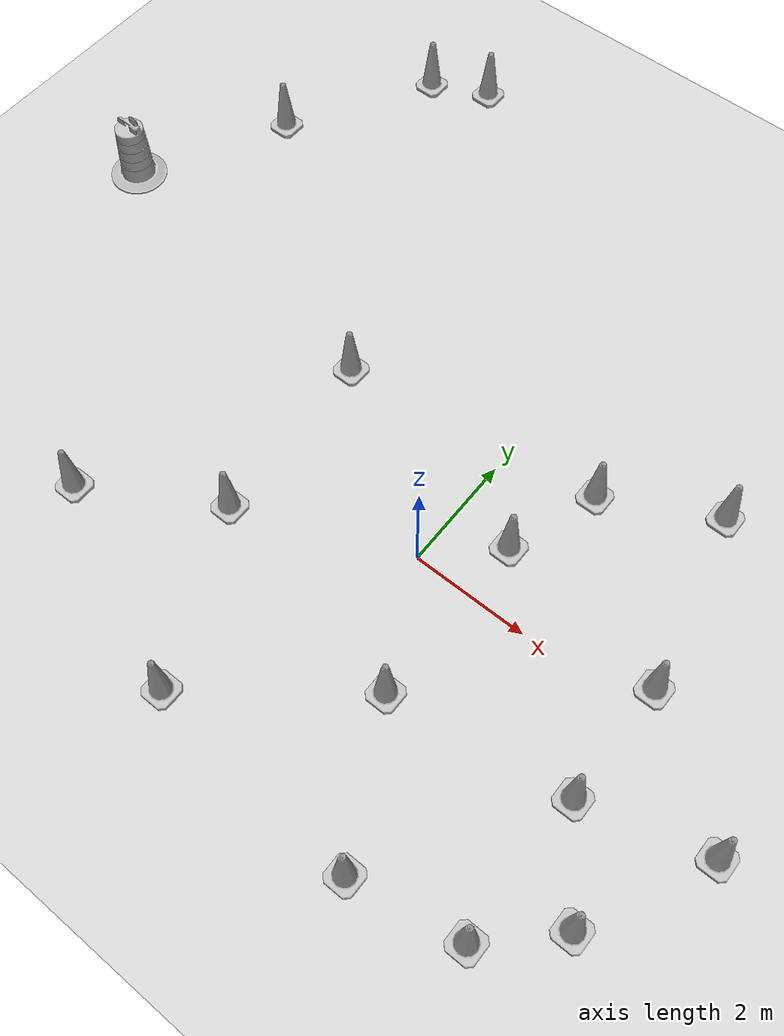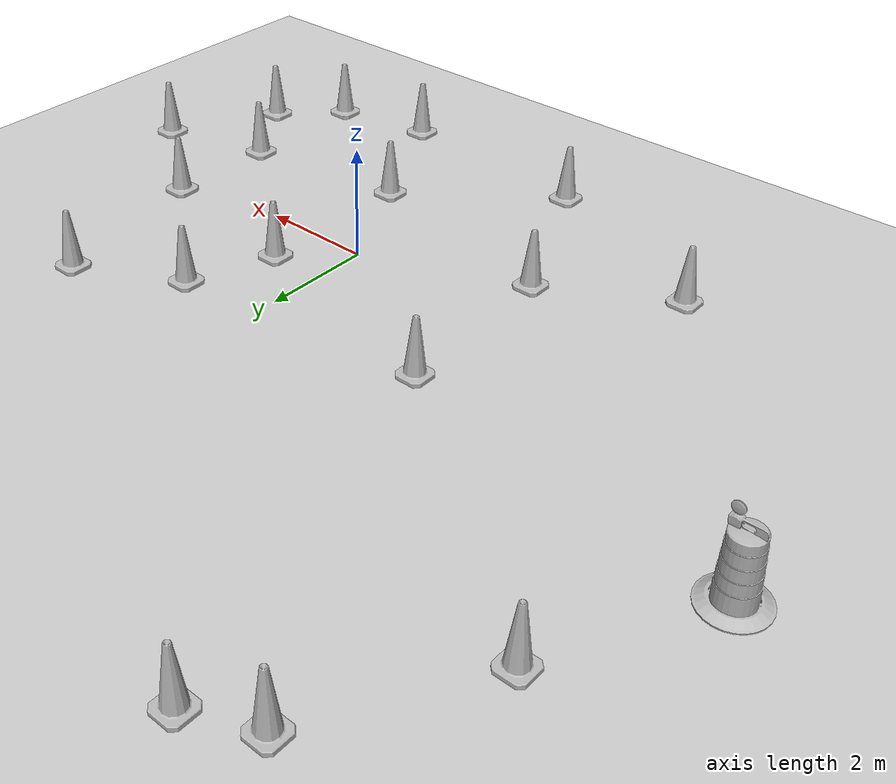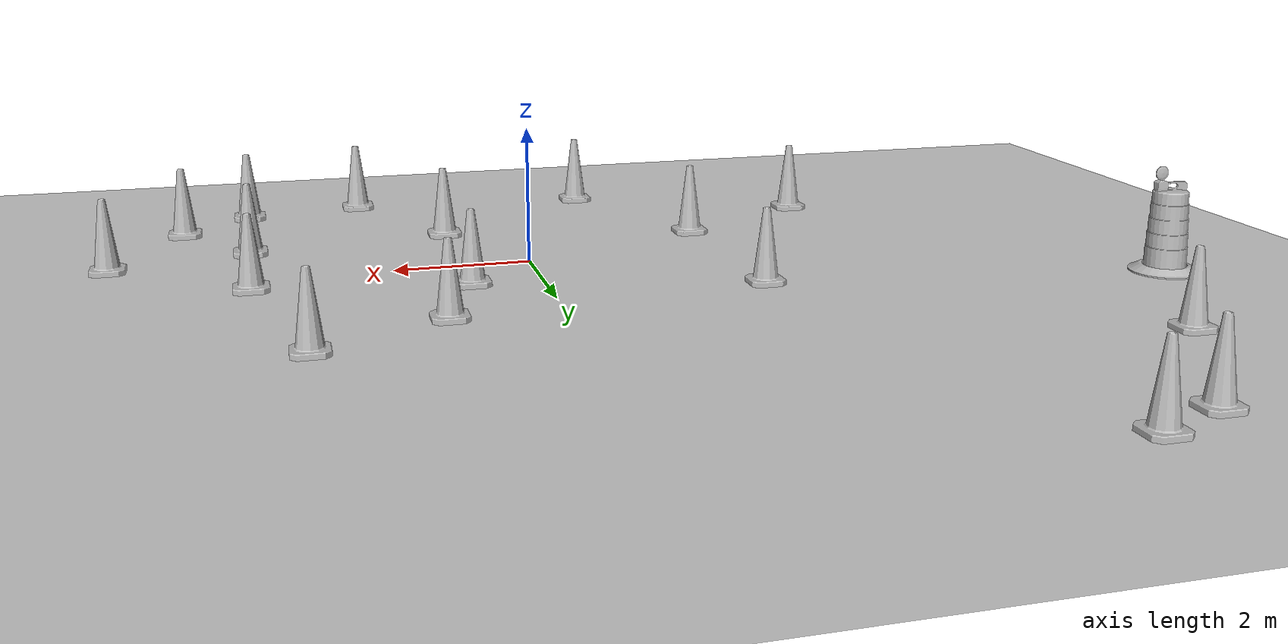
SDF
<sdf version="1.7">
 <world name="default">
  <light name="sun" type="directional">
   <pose>0 0 10 0 -0 0</pose>
   <diffuse>0.8 0.8 0.8 1</diffuse>
   <specular>0.2 0.2 0.2 1</specular>
   <attenuation>
    <range>1000</range>
    <constant>0.9</constant>
    <linear>0.01</linear>
    <quadratic>0.001</quadratic>
   </attenuation>
   <direction>-0.5 0.1 -0.9</direction>
   <spot><inner_angle>0</inner_angle><outer_angle>0</outer_angle><falloff>0</falloff></spot>
  </light>
  <model name="ground_plane">
   <static>1</static>
   <link name="link">
    <collision name="collision">
     <geometry><plane><normal>0 0 1</normal><size>100 100</size></plane></geometry>
     <surface>
      <contact><collide_bitmask>65535</collide_bitmask></contact>
      <friction><ode><mu>100</mu><mu2>50</mu2></ode></friction>
     </surface>
    </collision>
    <visual name="visual">
     <cast_shadows>0</cast_shadows>
     <geometry><plane><normal>0 0 1</normal><size>100 100</size></plane></geometry>
     <material>
      <script><uri>file://media/materials/scripts/gazebo.material</uri><name>Gazebo/Grey</name></script>
     </material>
    </visual>
   </link>
  </model>
  <gravity>0 0 -9.8</gravity>
  <magnetic_field>6e-06 2.3e-05 -4.2e-05</magnetic_field>
  <atmosphere type="adiabatic"/>
  <physics type="ode">
   <max_step_size>0.001</max_step_size>
   <real_time_factor>1</real_time_factor>
   <real_time_update_rate>1000</real_time_update_rate>
  </physics>
  <scene><ambient>0.4 0.4 0.4 1</ambient><background>0.7 0.7 0.7 1</background><shadows>1</shadows></scene>
  <audio><device>default</device></audio>
  <spherical_coordinates>
   <surface_model>EARTH_WGS84</surface_model>
   <latitude_deg>0</latitude_deg>
   <longitude_deg>0</longitude_deg>
   <elevation>0</elevation>
   <heading_deg>0</heading_deg>
  </spherical_coordinates>
  <model name="Construction Barrel">
   <link name="link">
    <inertial>
     <pose>0 0 0.4 0 -0 0</pose>
     <mass>500</mass>
     <inertia><ixx>51.2096</ixx><iyy>51.2096</iyy><izz>25</izz><ixy>0</ixy><ixz>0</ixz><iyz>0</iyz></inertia>
    </inertial>
    <collision name="collision">
     <geometry><mesh><uri>model://construction_barrel/meshes/construction_barrel.dae</uri></mesh></geometry>
    </collision>
    <visual name="visual">
     <geometry><mesh><uri>model://construction_barrel/meshes/construction_barrel.dae</uri></mesh></geometry>
    </visual>
   </link>
   <pose>-8.82426 2.90309 0 2e-06 -0 -2e-05</pose>
  </model>
  <model name="Construction Cone">
   <link name="link">
    <collision name="collision">
     <geometry>
      <mesh><scale>10 10 10</scale><uri>model://construction_cone/meshes/construction_cone.dae</uri></mesh>
     </geometry>
    </collision>
    <visual name="visual">
     <geometry>
      <mesh><scale>10 10 10</scale><uri>model://construction_cone/meshes/construction_cone.dae</uri></mesh>
     </geometry>
    </visual>
    <inertial>
     <inertia><ixx>1</ixx><ixy>0</ixy><ixz>0</ixz><iyy>1</iyy><iyz>0</iyz><izz>1</izz></inertia>
     <mass>1</mass>
    </inertial>
   </link>
   <pose>-2.83472 -1.16113 -8e-06 1e-06 -0 0</pose>
  </model>
  <model name="Construction Cone_clone">
   <link name="link">
    <collision name="collision">
     <geometry>
      <mesh><scale>10 10 10</scale><uri>model://construction_cone/meshes/construction_cone.dae</uri></mesh>
     </geometry>
    </collision>
    <visual name="visual">
     <geometry>
      <mesh><scale>10 10 10</scale><uri>model://construction_cone/meshes/construction_cone.dae</uri></mesh>
     </geometry>
    </visual>
    <inertial>
     <inertia><ixx>1</ixx><ixy>0</ixy><ixz>0</ixz><iyy>1</iyy><iyz>0</iyz><izz>1</izz></inertia>
     <mass>1</mass>
    </inertial>
   </link>
   <pose>1 -2 -0 0 -0 0</pose>
  </model>
  <model name="Construction Cone_clone_0">
   <link name="link">
    <collision name="collision">
     <geometry>
      <mesh><scale>10 10 10</scale><uri>model://construction_cone/meshes/construction_cone.dae</uri></mesh>
     </geometry>
    </collision>
    <visual name="visual">
     <geometry>
      <mesh><scale>10 10 10</scale><uri>model://construction_cone/meshes/construction_cone.dae</uri></mesh>
     </geometry>
    </visual>
    <inertial>
     <inertia><ixx>1</ixx><ixy>0</ixy><ixz>0</ixz><iyy>1</iyy><iyz>0</iyz><izz>1</izz></inertia>
     <mass>1</mass>
    </inertial>
   </link>
   <pose>1 1 -1e-05 0 1e-06 0</pose>
  </model>
  <model name="Construction Cone_clone_1">
   <link name="link">
    <collision name="collision">
     <geometry>
      <mesh><scale>10 10 10</scale><uri>model://construction_cone/meshes/construction_cone.dae</uri></mesh>
     </geometry>
    </collision>
    <visual name="visual">
     <geometry>
      <mesh><scale>10 10 10</scale><uri>model://construction_cone/meshes/construction_cone.dae</uri></mesh>
     </geometry>
    </visual>
    <inertial>
     <inertia><ixx>1</ixx><ixy>0</ixy><ixz>0</ixz><iyy>1</iyy><iyz>0</iyz><izz>1</izz></inertia>
     <mass>1</mass>
    </inertial>
   </link>
   <pose>-5 8.4629 -0 0 -1e-06 0</pose>
  </model>
  <model name="Construction Cone_clone_2">
   <link name="link">
    <collision name="collision">
     <geometry>
      <mesh><scale>10 10 10</scale><uri>model://construction_cone/meshes/construction_cone.dae</uri></mesh>
     </geometry>
    </collision>
    <visual name="visual">
     <geometry>
      <mesh><scale>10 10 10</scale><uri>model://construction_cone/meshes/construction_cone.dae</uri></mesh>
     </geometry>
    </visual>
    <inertial>
     <inertia><ixx>1</ixx><ixy>0</ixy><ixz>0</ixz><iyy>1</iyy><iyz>0</iyz><izz>1</izz></inertia>
     <mass>1</mass>
    </inertial>
   </link>
   <pose>-6 8 -0 0 -0 0</pose>
  </model>
  <model name="Construction Cone_clone_3">
   <link name="link">
    <collision name="collision">
     <geometry>
      <mesh><scale>10 10 10</scale><uri>model://construction_cone/meshes/construction_cone.dae</uri></mesh>
     </geometry>
    </collision>
    <visual name="visual">
     <geometry>
      <mesh><scale>10 10 10</scale><uri>model://construction_cone/meshes/construction_cone.dae</uri></mesh>
     </geometry>
    </visual>
    <inertial>
     <inertia><ixx>1</ixx><ixy>0</ixy><ixz>0</ixz><iyy>1</iyy><iyz>0</iyz><izz>1</izz></inertia>
     <mass>1</mass>
    </inertial>
   </link>
   <pose>-7.47852 5.46938 -0 0 -0 0</pose>
  </model>
  <model name="Construction Cone_clone_4">
   <link name="link">
    <collision name="collision">
     <geometry>
      <mesh><scale>10 10 10</scale><uri>model://construction_cone/meshes/construction_cone.dae</uri></mesh>
     </geometry>
    </collision>
    <visual name="visual">
     <geometry>
      <mesh><scale>10 10 10</scale><uri>model://construction_cone/meshes/construction_cone.dae</uri></mesh>
     </geometry>
    </visual>
    <inertial>
     <inertia><ixx>1</ixx><ixy>0</ixy><ixz>0</ixz><iyy>1</iyy><iyz>0</iyz><izz>1</izz></inertia>
     <mass>1</mass>
    </inertial>
   </link>
   <pose>-3 2 -0 0 -0 0</pose>
  </model>
  <model name="Construction Cone_clone_5">
   <link name="link">
    <collision name="collision">
     <geometry>
      <mesh><scale>10 10 10</scale><uri>model://construction_cone/meshes/construction_cone.dae</uri></mesh>
     </geometry>
    </collision>
    <visual name="visual">
     <geometry>
      <mesh><scale>10 10 10</scale><uri>model://construction_cone/meshes/construction_cone.dae</uri></mesh>
     </geometry>
    </visual>
    <inertial>
     <inertia><ixx>1</ixx><ixy>0</ixy><ixz>0</ixz><iyy>1</iyy><iyz>0</iyz><izz>1</izz></inertia>
     <mass>1</mass>
    </inertial>
   </link>
   <pose>1.52456 2.56604 -0 0 -0 0</pose>
  </model>
  <model name="Construction Cone_clone_6">
   <link name="link">
    <collision name="collision">
     <geometry>
      <mesh><scale>10 10 10</scale><uri>model://construction_cone/meshes/construction_cone.dae</uri></mesh>
     </geometry>
    </collision>
    <visual name="visual">
     <geometry>
      <mesh><scale>10 10 10</scale><uri>model://construction_cone/meshes/construction_cone.dae</uri></mesh>
     </geometry>
    </visual>
    <inertial>
     <inertia><ixx>1</ixx><ixy>0</ixy><ixz>0</ixz><iyy>1</iyy><iyz>0</iyz><izz>1</izz></inertia>
     <mass>1</mass>
    </inertial>
   </link>
   <pose>4 -4 -0 0 -0 0</pose>
  </model>
  <model name="Construction Cone_clone_7">
   <link name="link">
    <collision name="collision">
     <geometry>
      <mesh><scale>10 10 10</scale><uri>model://construction_cone/meshes/construction_cone.dae</uri></mesh>
     </geometry>
    </collision>
    <visual name="visual">
     <geometry>
      <mesh><scale>10 10 10</scale><uri>model://construction_cone/meshes/construction_cone.dae</uri></mesh>
     </geometry>
    </visual>
    <inertial>
     <inertia><ixx>1</ixx><ixy>0</ixy><ixz>0</ixz><iyy>1</iyy><iyz>0</iyz><izz>1</izz></inertia>
     <mass>1</mass>
    </inertial>
   </link>
   <pose>4 -1.55661 -9e-06 -1e-06 0 0</pose>
  </model>
  <model name="Construction Cone_clone_8">
   <link name="link">
    <collision name="collision">
     <geometry>
      <mesh><scale>10 10 10</scale><uri>model://construction_cone/meshes/construction_cone.dae</uri></mesh>
     </geometry>
    </collision>
    <visual name="visual">
     <geometry>
      <mesh><scale>10 10 10</scale><uri>model://construction_cone/meshes/construction_cone.dae</uri></mesh>
     </geometry>
    </visual>
    <inertial>
     <inertia><ixx>1</ixx><ixy>0</ixy><ixz>0</ixz><iyy>1</iyy><iyz>0</iyz><izz>1</izz></inertia>
     <mass>1</mass>
    </inertial>
   </link>
   <pose>4 0.493473 -0 0 -0 0</pose>
  </model>
  <model name="Construction Cone_clone_9">
   <link name="link">
    <collision name="collision">
     <geometry>
      <mesh><scale>10 10 10</scale><uri>model://construction_cone/meshes/construction_cone.dae</uri></mesh>
     </geometry>
    </collision>
    <visual name="visual">
     <geometry>
      <mesh><scale>10 10 10</scale><uri>model://construction_cone/meshes/construction_cone.dae</uri></mesh>
     </geometry>
    </visual>
    <inertial>
     <inertia><ixx>1</ixx><ixy>0</ixy><ixz>0</ixz><iyy>1</iyy><iyz>0</iyz><izz>1</izz></inertia>
     <mass>1</mass>
    </inertial>
   </link>
   <pose>5 -3 -0 0 -0 0</pose>
  </model>
  <model name="Construction Cone_clone_10">
   <link name="link">
    <collision name="collision">
     <geometry>
      <mesh><scale>10 10 10</scale><uri>model://construction_cone/meshes/construction_cone.dae</uri></mesh>
     </geometry>
    </collision>
    <visual name="visual">
     <geometry>
      <mesh><scale>10 10 10</scale><uri>model://construction_cone/meshes/construction_cone.dae</uri></mesh>
     </geometry>
    </visual>
    <inertial>
     <inertia><ixx>1</ixx><ixy>0</ixy><ixz>0</ixz><iyy>1</iyy><iyz>0</iyz><izz>1</izz></inertia>
     <mass>1</mass>
    </inertial>
   </link>
   <pose>2.19402 -4.3393 -1e-06 2e-06 2e-06 0</pose>
  </model>
  <model name="Construction Cone_clone_11">
   <link name="link">
    <collision name="collision">
     <geometry>
      <mesh><scale>10 10 10</scale><uri>model://construction_cone/meshes/construction_cone.dae</uri></mesh>
     </geometry>
    </collision>
    <visual name="visual">
     <geometry>
      <mesh><scale>10 10 10</scale><uri>model://construction_cone/meshes/construction_cone.dae</uri></mesh>
     </geometry>
    </visual>
    <inertial>
     <inertia><ixx>1</ixx><ixy>0</ixy><ixz>0</ixz><iyy>1</iyy><iyz>0</iyz><izz>1</izz></inertia>
     <mass>1</mass>
    </inertial>
   </link>
   <pose>-5 -2.42548 -0 0 -1e-06 0</pose>
  </model>
  <model name="Construction Cone_clone_12">
   <link name="link">
    <collision name="collision">
     <geometry>
      <mesh><scale>10 10 10</scale><uri>model://construction_cone/meshes/construction_cone.dae</uri></mesh>
     </geometry>
    </collision>
    <visual name="visual">
     <geometry>
      <mesh><scale>10 10 10</scale><uri>model://construction_cone/meshes/construction_cone.dae</uri></mesh>
     </geometry>
    </visual>
    <inertial>
     <inertia><ixx>1</ixx><ixy>0</ixy><ixz>0</ixz><iyy>1</iyy><iyz>0</iyz><izz>1</izz></inertia>
     <mass>1</mass>
    </inertial>
   </link>
   <pose>-1.56715 -4 -0 0 -1e-06 0</pose>
  </model>
  <model name="Construction Cone_clone_13">
   <link name="link">
    <collision name="collision">
     <geometry>
      <mesh><scale>10 10 10</scale><uri>model://construction_cone/meshes/construction_cone.dae</uri></mesh>
     </geometry>
    </collision>
    <visual name="visual">
     <geometry>
      <mesh><scale>10 10 10</scale><uri>model://construction_cone/meshes/construction_cone.dae</uri></mesh>
     </geometry>
    </visual>
    <inertial>
     <inertia><ixx>1</ixx><ixy>0</ixy><ixz>0</ixz><iyy>1</iyy><iyz>0</iyz><izz>1</izz></inertia>
     <mass>1</mass>
    </inertial>
   </link>
   <pose>6 -1 -0 0 -0 0</pose>
  </model>
  <model name="Construction Cone_clone_14">
   <link name="link">
    <collision name="collision">
     <geometry>
      <mesh><scale>10 10 10</scale><uri>model://construction_cone/meshes/construction_cone.dae</uri></mesh>
     </geometry>
    </collision>
    <visual name="visual">
     <geometry>
      <mesh><scale>10 10 10</scale><uri>model://construction_cone/meshes/construction_cone.dae</uri></mesh>
     </geometry>
    </visual>
    <inertial>
     <inertia><ixx>1</ixx><ixy>0</ixy><ixz>0</ixz><iyy>1</iyy><iyz>0</iyz><izz>1</izz></inertia>
     <mass>1</mass>
    </inertial>
   </link>
   <pose>3.33246 3.52034 -0 0 -0 0</pose>
  </model>
 </world>
</sdf>
